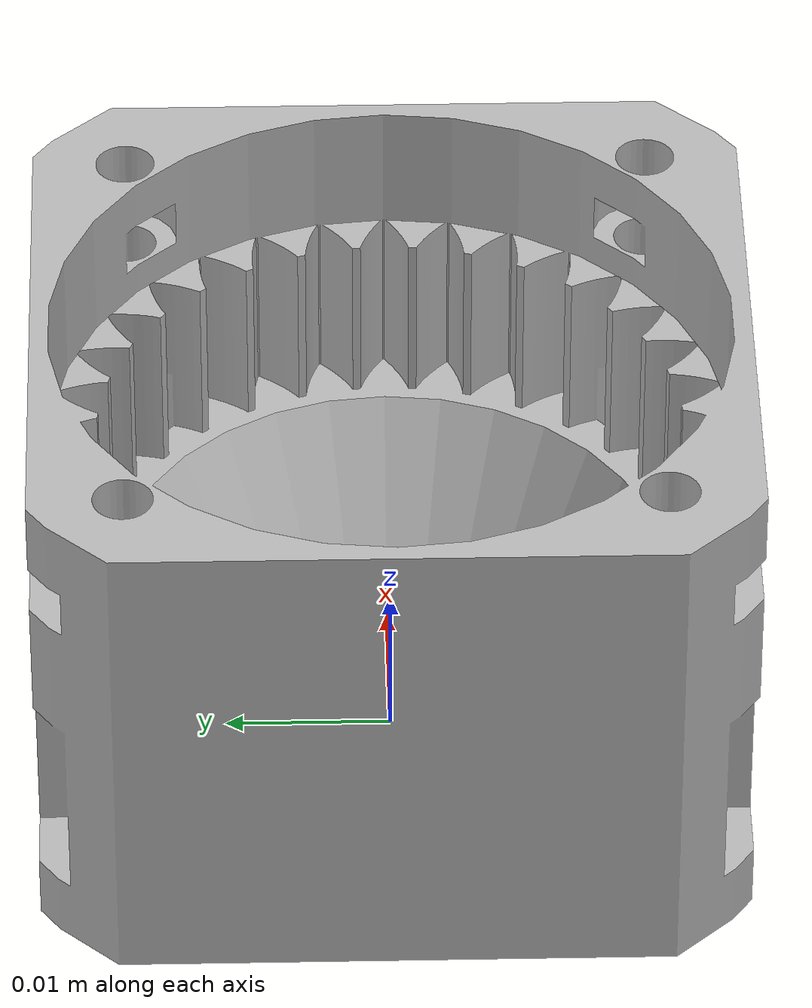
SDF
<?xml version="1.0" ?>
<sdf version="1.5">
  <model name="housing">
    <static>false</static>
    <link name="link">
      <collision name="collision">
        <geometry>
          <mesh>
            <scale>1 1 1</scale>
            <uri>model://Nema/housing/housing.dae</uri>
          </mesh>
        </geometry>
      </collision>
      <visual name="visual">
        <geometry>
          <mesh>
            <scale>1 1 1</scale>
            <uri>model://Nema/housing/housing.dae</uri>
          </mesh>
        </geometry>
      </visual>
    </link>
  </model>
</sdf>
